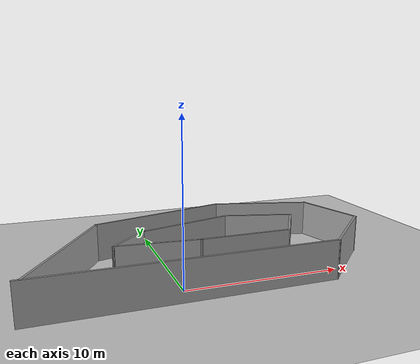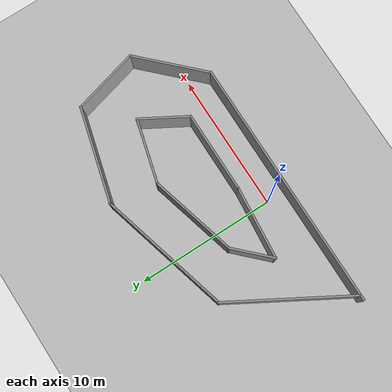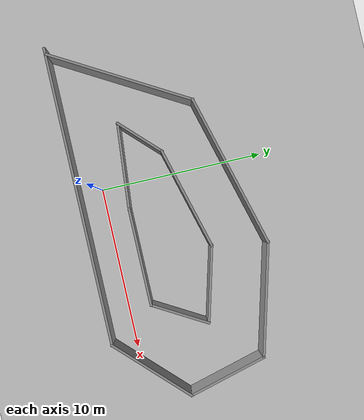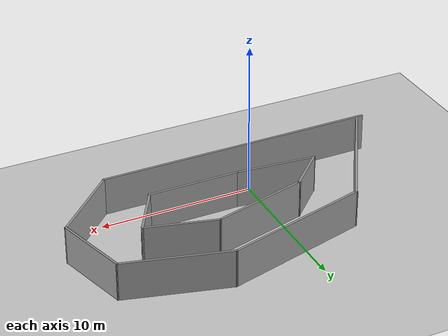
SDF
<sdf version="1.7">
 <world name="default">
  <model name="ground_plane">
   <static>1</static>
   <link name="link">
    <collision name="collision">
     <geometry><plane><normal>0 0 1</normal><size>100 100</size></plane></geometry>
     <surface><friction><ode><mu>100</mu><mu2>50</mu2></ode></friction></surface>
    </collision>
    <visual name="visual">
     <cast_shadows>0</cast_shadows>
     <geometry><plane><normal>0 0 1</normal><size>100 100</size></plane></geometry>
     <material>
      <script><uri>file://media/materials/scripts/gazebo.material</uri><name>Gazebo/Grey</name></script>
     </material>
    </visual>
   </link>
  </model>
  <light name="sun" type="directional">
   <pose>0 0 10 0 -0 0</pose>
   <diffuse>0.8 0.8 0.8 1</diffuse>
   <specular>0.2 0.2 0.2 1</specular>
   <attenuation>
    <range>1000</range>
    <constant>0.9</constant>
    <linear>0.01</linear>
    <quadratic>0.001</quadratic>
   </attenuation>
   <direction>-0.5 0.1 -0.9</direction>
   <spot><inner_angle>0</inner_angle><outer_angle>0</outer_angle><falloff>0</falloff></spot>
  </light>
  <scene><shadows>0</shadows><ambient>0.4 0.4 0.4 1</ambient><background>0.7 0.7 0.7 1</background></scene>
  <physics type="ode">
   <real_time_update_rate>1000</real_time_update_rate>
   <max_step_size>0.001</max_step_size>
   <real_time_factor>1</real_time_factor>
   <ode>
    <solver>
     <type>quick</type>
     <iters>150</iters>
     <precon_iters>0</precon_iters>
     <sor>1.4</sor>
     <use_dynamic_moi_rescaling>1</use_dynamic_moi_rescaling>
    </solver>
    <constraints>
     <cfm>1e-05</cfm>
     <erp>0.2</erp>
     <contact_max_correcting_vel>2000</contact_max_correcting_vel>
     <contact_surface_layer>0.01</contact_surface_layer>
    </constraints>
   </ode>
  </physics>
  <gravity>0 0 -9.8</gravity>
  <magnetic_field>6e-06 2.3e-05 -4.2e-05</magnetic_field>
  <atmosphere type="adiabatic"/>
  <audio><device>default</device></audio>
  <spherical_coordinates>
   <surface_model>EARTH_WGS84</surface_model>
   <latitude_deg>0</latitude_deg>
   <longitude_deg>0</longitude_deg>
   <elevation>0</elevation>
   <heading_deg>0</heading_deg>
  </spherical_coordinates>
  <model name="track2">
   <pose>2.17521 3.84922 0 0 -0 0</pose>
   <link name="Wall_10">
    <collision name="Wall_10_Collision">
     <geometry><box><size>5.75 0.15 2.5</size></box></geometry>
     <pose>0 0 1.25 0 -0 0</pose>
    </collision>
    <visual name="Wall_10_Visual">
     <pose>0 0 1.25 0 -0 0</pose>
     <geometry><box><size>5.75 0.15 2.5</size></box></geometry>
     <material>
      <script><uri>file://media/materials/scripts/gazebo.material</uri><name>Gazebo/Grey</name></script>
      <ambient>1 1 1 1</ambient>
     </material>
     <meta><layer>0</layer></meta>
    </visual>
    <pose>9.03447 -3.22172 0 0 -0 0.785398</pose>
   </link>
   <link name="Wall_11">
    <collision name="Wall_11_Collision">
     <geometry><box><size>5 0.15 2.5</size></box></geometry>
     <pose>0 0 1.25 0 -0 0</pose>
    </collision>
    <visual name="Wall_11_Visual">
     <pose>0 0 1.25 0 -0 0</pose>
     <geometry><box><size>5 0.15 2.5</size></box></geometry>
     <material>
      <script><uri>file://media/materials/scripts/gazebo.material</uri><name>Gazebo/Grey</name></script>
      <ambient>1 1 1 1</ambient>
     </material>
     <meta><layer>0</layer></meta>
    </visual>
    <pose>10.3867 1.10055 0 0 -0 1.8326</pose>
   </link>
   <link name="Wall_12">
    <collision name="Wall_12_Collision">
     <geometry><box><size>7 0.15 2.5</size></box></geometry>
     <pose>0 0 1.25 0 -0 0</pose>
    </collision>
    <visual name="Wall_12_Visual">
     <pose>0 0 1.25 0 -0 0</pose>
     <geometry><box><size>7 0.15 2.5</size></box></geometry>
     <material>
      <script><uri>file://media/materials/scripts/gazebo.material</uri><name>Gazebo/Grey</name></script>
      <ambient>1 1 1 1</ambient>
     </material>
     <meta><layer>0</layer></meta>
    </visual>
    <pose>6.4508 4.32937 0 0 -0 2.87979</pose>
   </link>
   <link name="Wall_13">
    <collision name="Wall_13_Collision">
     <geometry><box><size>9.75 0.15 2.5</size></box></geometry>
     <pose>0 0 1.25 0 -0 0</pose>
    </collision>
    <visual name="Wall_13_Visual">
     <pose>0 0 1.25 0 -0 0</pose>
     <geometry><box><size>9.75 0.15 2.5</size></box></geometry>
     <material>
      <script><uri>file://media/materials/scripts/gazebo.material</uri><name>Gazebo/Grey</name></script>
      <ambient>1 1 1 1</ambient>
     </material>
     <meta><layer>0</layer></meta>
    </visual>
    <pose>-1.49394 3.9735 0 0 -0 -2.87979</pose>
   </link>
   <link name="Wall_14">
    <collision name="Wall_14_Collision">
     <geometry><box><size>9.25 0.15 2.5</size></box></geometry>
     <pose>0 0 1.25 0 -0 0</pose>
    </collision>
    <visual name="Wall_14_Visual">
     <pose>0 0 1.25 0 -0 0</pose>
     <geometry><box><size>9.25 0.15 2.5</size></box></geometry>
     <material>
      <script><uri>file://media/materials/scripts/gazebo.material</uri><name>Gazebo/Grey</name></script>
      <ambient>1 1 1 1</ambient>
     </material>
     <meta><layer>0</layer></meta>
    </visual>
    <pose>-8.40539 -1.20925 0 0 -0 -2.0944</pose>
   </link>
   <link name="Wall_18">
    <collision name="Wall_18_Collision">
     <geometry><box><size>6 0.15 2.5</size></box></geometry>
     <pose>0 0 1.25 0 -0 0</pose>
    </collision>
    <visual name="Wall_18_Visual">
     <pose>0 0 1.25 0 -0 0</pose>
     <geometry><box><size>6 0.15 2.5</size></box></geometry>
     <material>
      <script><uri>file://media/materials/scripts/gazebo.material</uri><name>Gazebo/Grey</name></script>
      <ambient>1 1 1 1</ambient>
     </material>
     <meta><layer>0</layer></meta>
    </visual>
    <pose>2.3097 -2.40363 0 0 -0 0</pose>
   </link>
   <link name="Wall_19">
    <collision name="Wall_19_Collision">
     <geometry><box><size>3.75 0.15 2.5</size></box></geometry>
     <pose>0 0 1.25 0 -0 0</pose>
    </collision>
    <visual name="Wall_19_Visual">
     <pose>0 0 1.25 0 -0 0</pose>
     <geometry><box><size>3.75 0.15 2.5</size></box></geometry>
     <material>
      <script><uri>file://media/materials/scripts/gazebo.material</uri><name>Gazebo/Grey</name></script>
      <ambient>1 1 1 1</ambient>
     </material>
     <meta><layer>0</layer></meta>
    </visual>
    <pose>6.1347 -0.84479 0 0 -0 1.0472</pose>
   </link>
   <link name="Wall_20">
    <collision name="Wall_20_Collision">
     <geometry><box><size>4.75 0.15 2.5</size></box></geometry>
     <pose>0 0 1.25 0 -0 0</pose>
    </collision>
    <visual name="Wall_20_Visual">
     <pose>0 0 1.25 0 -0 0</pose>
     <geometry><box><size>4.75 0.15 2.5</size></box></geometry>
     <material>
      <script><uri>file://media/materials/scripts/gazebo.material</uri><name>Gazebo/Grey</name></script>
      <ambient>1 1 1 1</ambient>
     </material>
     <meta><layer>0</layer></meta>
    </visual>
    <pose>4.81307 1.30934 0 0 -0 2.87979</pose>
   </link>
   <link name="Wall_21">
    <collision name="Wall_21_Collision">
     <geometry><box><size>6.5 0.15 2.5</size></box></geometry>
     <pose>0 0 1.25 0 -0 0</pose>
    </collision>
    <visual name="Wall_21_Visual">
     <pose>0 0 1.25 0 -0 0</pose>
     <geometry><box><size>6.5 0.15 2.5</size></box></geometry>
     <material>
      <script><uri>file://media/materials/scripts/gazebo.material</uri><name>Gazebo/Grey</name></script>
      <ambient>1 1 1 1</ambient>
     </material>
     <meta><layer>0</layer></meta>
    </visual>
    <pose>-0.475371 1.08287 0 0 -0 -2.87979</pose>
   </link>
   <link name="Wall_22">
    <collision name="Wall_22_Collision">
     <geometry><box><size>3.25 0.15 2.5</size></box></geometry>
     <pose>0 0 1.25 0 -0 0</pose>
    </collision>
    <visual name="Wall_22_Visual">
     <pose>0 0 1.25 0 -0 0</pose>
     <geometry><box><size>3.25 0.15 2.5</size></box></geometry>
     <material>
      <script><uri>file://media/materials/scripts/gazebo.material</uri><name>Gazebo/Grey</name></script>
      <ambient>1 1 1 1</ambient>
     </material>
     <meta><layer>0</layer></meta>
    </visual>
    <pose>-4.6382 -0.834893 0 0 -0 -2.35619</pose>
   </link>
   <link name="Wall_23">
    <collision name="Wall_23_Collision">
     <geometry><box><size>5.2907 0.15 2.5</size></box></geometry>
     <pose>0 0 1.25 0 -0 0</pose>
    </collision>
    <visual name="Wall_23_Visual">
     <pose>0 0 1.25 0 -0 0</pose>
     <geometry><box><size>5.2907 0.15 2.5</size></box></geometry>
     <material>
      <script><uri>file://media/materials/scripts/gazebo.material</uri><name>Gazebo/Grey</name></script>
      <ambient>1 1 1 1</ambient>
     </material>
     <meta><layer>0</layer></meta>
    </visual>
    <pose>-3.17476 -2.16727 0 0 -0 -0.092088</pose>
   </link>
   <link name="Wall_9">
    <collision name="Wall_9_Collision">
     <geometry><box><size>18.25 0.15 2.5</size></box></geometry>
     <pose>0 0 1.25 0 -0 0</pose>
    </collision>
    <visual name="Wall_9_Visual">
     <pose>0 0 1.25 0 -0 0</pose>
     <geometry><box><size>18.25 0.15 2.5</size></box></geometry>
     <material>
      <script><uri>file://media/materials/scripts/gazebo.material</uri><name>Gazebo/Grey</name></script>
      <ambient>1 1 1 1</ambient>
     </material>
     <meta><layer>0</layer></meta>
    </visual>
    <pose>-1.99543 -5.20162 0 0 -0 0</pose>
   </link>
   <static>1</static>
  </model>
 </world>
</sdf>
